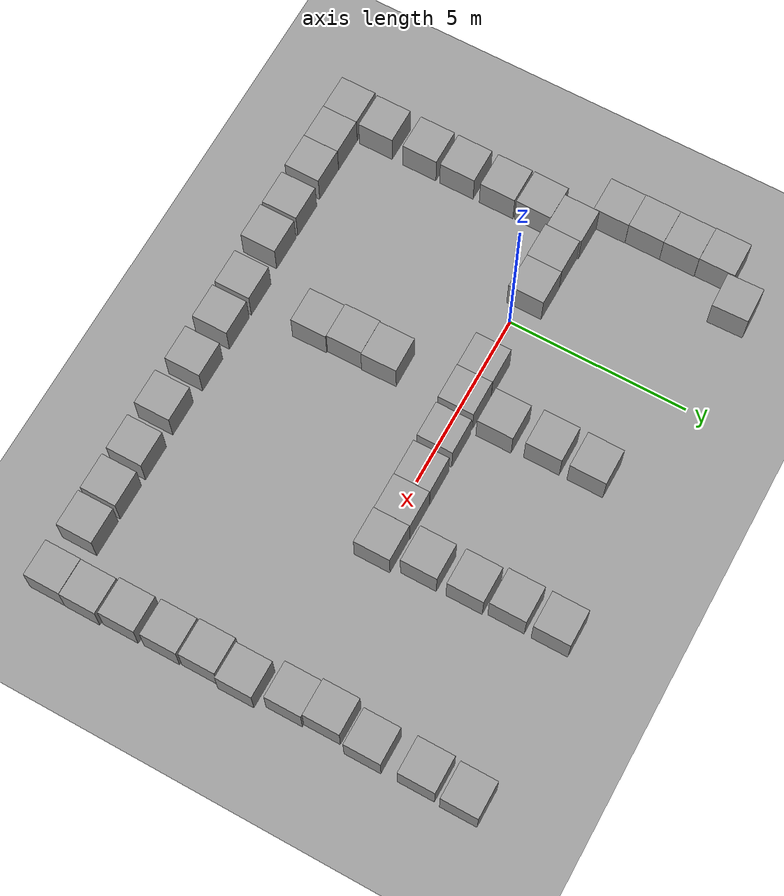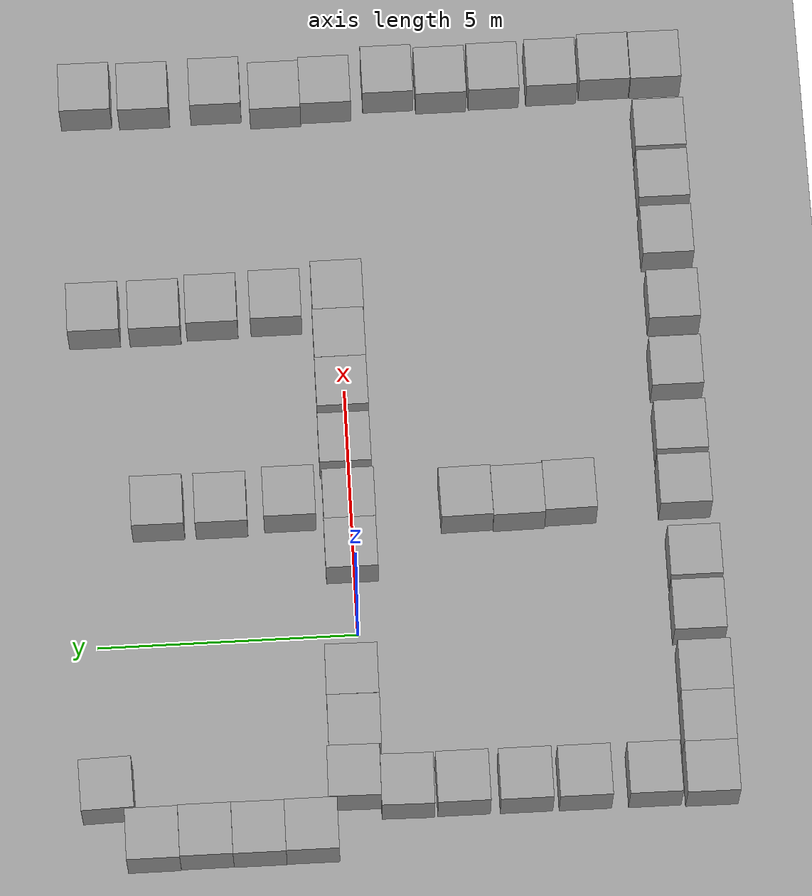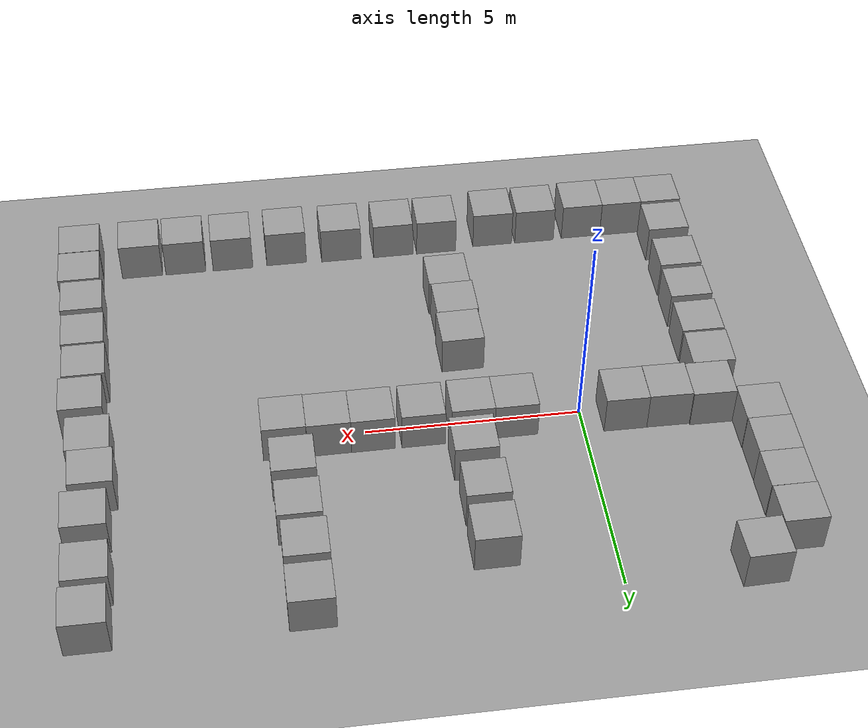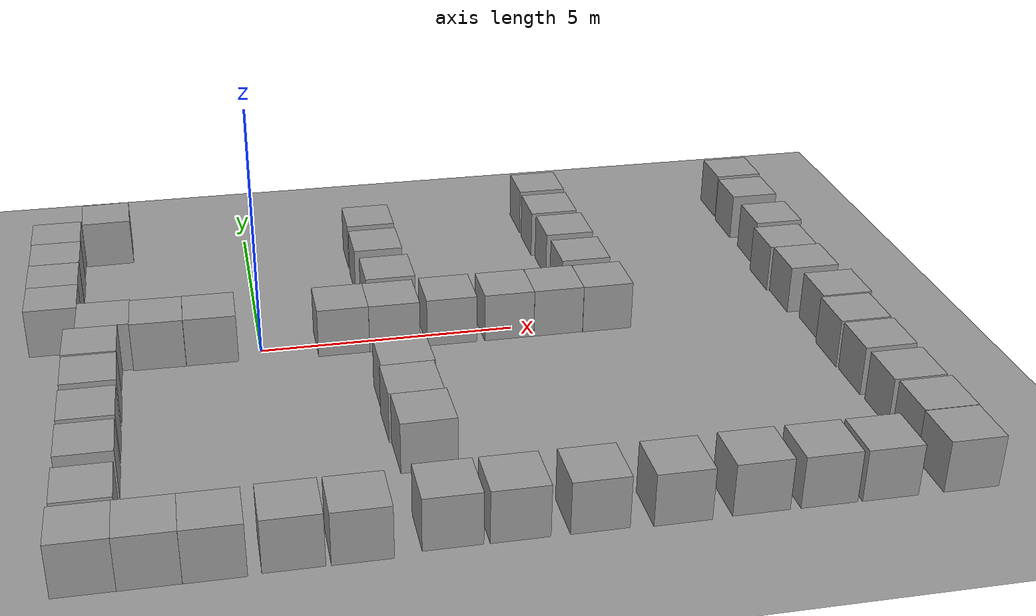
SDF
<sdf version="1.6">
 <world name="default">
  <model name="ground_plane_0">
   <static>1</static>
   <link name="link">
    <collision name="collision">
     <geometry><plane><normal>0 0 1</normal><size>100 100</size></plane></geometry>
     <surface><friction><ode><mu>100</mu><mu2>50</mu2></ode></friction></surface>
    </collision>
    <visual name="visual">
     <cast_shadows>0</cast_shadows>
     <geometry><plane><normal>0 0 1</normal><size>100 100</size></plane></geometry>
     <material>
      <script><uri>file://media/materials/scripts/gazebo.material</uri><name>Gazebo/Grey</name></script>
     </material>
    </visual>
    <velocity_decay><linear>0</linear><angular>0</angular></velocity_decay>
   </link>
   <pose>0.497681 0 0 0 -0 0</pose>
  </model>
  <model name="unit_box_0_11">
   <pose>-0.949566 0.164537 0.49907 0.0001 -0 -0.010168</pose>
   <link name="link">
    <inertial>
     <mass>1</mass>
     <inertia>
      <ixx>0.166667</ixx>
      <ixy>0</ixy>
      <ixz>0</ixz>
      <iyy>0.166667</iyy>
      <iyz>0</iyz>
      <izz>0.166667</izz>
     </inertia>
    </inertial>
    <collision name="collision"><geometry><box><size>1 1 1</size></box></geometry></collision>
    <visual name="visual">
     <geometry><box><size>1 1 1</size></box></geometry>
     <material>
      <script><name>Gazebo/Grey</name><uri>file://media/materials/scripts/gazebo.material</uri></script>
     </material>
    </visual>
   </link>
  </model>
  <model name="unit_box_0_12">
   <pose>-1.95101 0.170149 0.49967 0.00066 -0 -0.013047</pose>
   <link name="link">
    <inertial>
     <mass>1</mass>
     <inertia>
      <ixx>0.166667</ixx>
      <ixy>0</ixy>
      <ixz>0</ixz>
      <iyy>0.166667</iyy>
      <iyz>0</iyz>
      <izz>0.166667</izz>
     </inertia>
    </inertial>
    <collision name="collision"><geometry><box><size>1 1 1</size></box></geometry></collision>
    <visual name="visual">
     <geometry><box><size>1 1 1</size></box></geometry>
     <material>
      <script><name>Gazebo/Grey</name><uri>file://media/materials/scripts/gazebo.material</uri></script>
     </material>
    </visual>
   </link>
  </model>
  <model name="unit_box_0_13">
   <pose>-2.95058 0.223115 0.49967 0.00066 0 -0.013393</pose>
   <link name="link">
    <inertial>
     <mass>1</mass>
     <inertia>
      <ixx>0.166667</ixx>
      <ixy>0</ixy>
      <ixz>0</ixz>
      <iyy>0.166667</iyy>
      <iyz>0</iyz>
      <izz>0.166667</izz>
     </inertia>
    </inertial>
    <collision name="collision"><geometry><box><size>1 1 1</size></box></geometry></collision>
    <visual name="visual">
     <geometry><box><size>1 1 1</size></box></geometry>
     <material>
      <script><name>Gazebo/Grey</name><uri>file://media/materials/scripts/gazebo.material</uri></script>
     </material>
    </visual>
   </link>
  </model>
  <model name="unit_box_0_14">
   <pose>-3.95128 1.06905 0.5 0 0 -0.002373</pose>
   <link name="link">
    <inertial>
     <mass>1</mass>
     <inertia>
      <ixx>0.166667</ixx>
      <ixy>0</ixy>
      <ixz>0</ixz>
      <iyy>0.166667</iyy>
      <iyz>0</iyz>
      <izz>0.166667</izz>
     </inertia>
    </inertial>
    <collision name="collision"><geometry><box><size>1 1 1</size></box></geometry></collision>
    <visual name="visual">
     <geometry><box><size>1 1 1</size></box></geometry>
     <material>
      <script><name>Gazebo/Grey</name><uri>file://media/materials/scripts/gazebo.material</uri></script>
     </material>
    </visual>
   </link>
  </model>
  <model name="unit_box_0_15">
   <pose>-3.95717 2.06918 0.49967 0 0.00066 -0.002203</pose>
   <link name="link">
    <inertial>
     <mass>1</mass>
     <inertia>
      <ixx>0.166667</ixx>
      <ixy>0</ixy>
      <ixz>0</ixz>
      <iyy>0.166667</iyy>
      <iyz>0</iyz>
      <izz>0.166667</izz>
     </inertia>
    </inertial>
    <collision name="collision"><geometry><box><size>1 1 1</size></box></geometry></collision>
    <visual name="visual">
     <geometry><box><size>1 1 1</size></box></geometry>
     <material>
      <script><name>Gazebo/Grey</name><uri>file://media/materials/scripts/gazebo.material</uri></script>
     </material>
    </visual>
   </link>
  </model>
  <model name="unit_box_0_16">
   <pose>-3.9524 3.07047 0.5 0 -0 0.000203</pose>
   <link name="link">
    <inertial>
     <mass>1</mass>
     <inertia>
      <ixx>0.166667</ixx>
      <ixy>0</ixy>
      <ixz>0</ixz>
      <iyy>0.166667</iyy>
      <iyz>0</iyz>
      <izz>0.166667</izz>
     </inertia>
    </inertial>
    <collision name="collision"><geometry><box><size>1 1 1</size></box></geometry></collision>
    <visual name="visual">
     <geometry><box><size>1 1 1</size></box></geometry>
     <material>
      <script><name>Gazebo/Grey</name><uri>file://media/materials/scripts/gazebo.material</uri></script>
     </material>
    </visual>
   </link>
  </model>
  <model name="unit_box_0_17">
   <pose>-3.96756 4.07164 0.49967 0 0.00066 0.002599</pose>
   <link name="link">
    <inertial>
     <mass>1</mass>
     <inertia>
      <ixx>0.166667</ixx>
      <ixy>0</ixy>
      <ixz>0</ixz>
      <iyy>0.166667</iyy>
      <iyz>0</iyz>
      <izz>0.166667</izz>
     </inertia>
    </inertial>
    <collision name="collision"><geometry><box><size>1 1 1</size></box></geometry></collision>
    <visual name="visual">
     <geometry><box><size>1 1 1</size></box></geometry>
     <material>
      <script><name>Gazebo/Grey</name><uri>file://media/materials/scripts/gazebo.material</uri></script>
     </material>
    </visual>
   </link>
  </model>
  <model name="unit_box_0_18">
   <pose>-2.96141 4.90048 0.49967 0.00066 -0 0.026859</pose>
   <link name="link">
    <inertial>
     <mass>1</mass>
     <inertia>
      <ixx>0.166667</ixx>
      <ixy>0</ixy>
      <ixz>0</ixz>
      <iyy>0.166667</iyy>
      <iyz>0</iyz>
      <izz>0.166667</izz>
     </inertia>
    </inertial>
    <collision name="collision"><geometry><box><size>1 1 1</size></box></geometry></collision>
    <visual name="visual">
     <geometry><box><size>1 1 1</size></box></geometry>
     <material>
      <script><name>Gazebo/Grey</name><uri>file://media/materials/scripts/gazebo.material</uri></script>
     </material>
    </visual>
   </link>
  </model>
  <model name="unit_box_0_34_clone_0_clone_11_clone_8">
   <pose>6.66555 4.83451 0.499798 0.000404 1e-06 1e-06</pose>
   <link name="link">
    <inertial>
     <mass>1</mass>
     <inertia>
      <ixx>0.166667</ixx>
      <ixy>0</ixy>
      <ixz>0</ixz>
      <iyy>0.166667</iyy>
      <iyz>0</iyz>
      <izz>0.166667</izz>
     </inertia>
    </inertial>
    <collision name="collision"><geometry><box><size>1 1 1</size></box></geometry></collision>
    <visual name="visual">
     <geometry><box><size>1 1 1</size></box></geometry>
     <material>
      <script><name>Gazebo/Grey</name><uri>file://media/materials/scripts/gazebo.material</uri></script>
     </material>
    </visual>
   </link>
  </model>
  <model name="unit_box_0_34_clone_0_clone_11_clone_9">
   <pose>6.65852 3.64831 0.499798 0.000404 1e-06 1e-06</pose>
   <link name="link">
    <inertial>
     <mass>1</mass>
     <inertia>
      <ixx>0.166667</ixx>
      <ixy>0</ixy>
      <ixz>0</ixz>
      <iyy>0.166667</iyy>
      <iyz>0</iyz>
      <izz>0.166667</izz>
     </inertia>
    </inertial>
    <collision name="collision"><geometry><box><size>1 1 1</size></box></geometry></collision>
    <visual name="visual">
     <geometry><box><size>1 1 1</size></box></geometry>
     <material>
      <script><name>Gazebo/Grey</name><uri>file://media/materials/scripts/gazebo.material</uri></script>
     </material>
    </visual>
   </link>
  </model>
  <model name="unit_box_0_34_clone_0_clone_11_clone_10">
   <pose>6.71962 2.52993 0.499798 0.000404 1e-06 1e-06</pose>
   <link name="link">
    <inertial>
     <mass>1</mass>
     <inertia>
      <ixx>0.166667</ixx>
      <ixy>0</ixy>
      <ixz>0</ixz>
      <iyy>0.166667</iyy>
      <iyz>0</iyz>
      <izz>0.166667</izz>
     </inertia>
    </inertial>
    <collision name="collision"><geometry><box><size>1 1 1</size></box></geometry></collision>
    <visual name="visual">
     <geometry><box><size>1 1 1</size></box></geometry>
     <material>
      <script><name>Gazebo/Grey</name><uri>file://media/materials/scripts/gazebo.material</uri></script>
     </material>
    </visual>
   </link>
  </model>
  <model name="unit_box_0_34_clone_0_clone_11_clone_11">
   <pose>6.74618 1.27647 0.499798 0.000404 1e-06 1e-06</pose>
   <link name="link">
    <inertial>
     <mass>1</mass>
     <inertia>
      <ixx>0.166667</ixx>
      <ixy>0</ixy>
      <ixz>0</ixz>
      <iyy>0.166667</iyy>
      <iyz>0</iyz>
      <izz>0.166667</izz>
     </inertia>
    </inertial>
    <collision name="collision"><geometry><box><size>1 1 1</size></box></geometry></collision>
    <visual name="visual">
     <geometry><box><size>1 1 1</size></box></geometry>
     <material>
      <script><name>Gazebo/Grey</name><uri>file://media/materials/scripts/gazebo.material</uri></script>
     </material>
    </visual>
   </link>
  </model>
  <model name="unit_box_0_34_clone_0_clone_11_clone_12">
   <pose>6.87925 0.056343 0.499798 -0.000404 1e-06 0.002412</pose>
   <link name="link">
    <inertial>
     <mass>1</mass>
     <inertia>
      <ixx>0.166667</ixx>
      <ixy>0</ixy>
      <ixz>0</ixz>
      <iyy>0.166667</iyy>
      <iyz>0</iyz>
      <izz>0.166667</izz>
     </inertia>
    </inertial>
    <collision name="collision"><geometry><box><size>1 1 1</size></box></geometry></collision>
    <visual name="visual">
     <geometry><box><size>1 1 1</size></box></geometry>
     <material>
      <script><name>Gazebo/Grey</name><uri>file://media/materials/scripts/gazebo.material</uri></script>
     </material>
    </visual>
   </link>
  </model>
  <model name="unit_box_0_34_clone_0_clone_11_clone_13">
   <pose>5.87884 0.066433 0.499798 0.000404 -0 0.003125</pose>
   <link name="link">
    <inertial>
     <mass>1</mass>
     <inertia>
      <ixx>0.166667</ixx>
      <ixy>0</ixy>
      <ixz>0</ixz>
      <iyy>0.166667</iyy>
      <iyz>0</iyz>
      <izz>0.166667</izz>
     </inertia>
    </inertial>
    <collision name="collision"><geometry><box><size>1 1 1</size></box></geometry></collision>
    <visual name="visual">
     <geometry><box><size>1 1 1</size></box></geometry>
     <material>
      <script><name>Gazebo/Grey</name><uri>file://media/materials/scripts/gazebo.material</uri></script>
     </material>
    </visual>
   </link>
  </model>
  <model name="unit_box_0_34_clone_0_clone_11_clone_14">
   <pose>4.87804 0.067524 0.499798 -0.000404 0 0.003949</pose>
   <link name="link">
    <inertial>
     <mass>1</mass>
     <inertia>
      <ixx>0.166667</ixx>
      <ixy>0</ixy>
      <ixz>0</ixz>
      <iyy>0.166667</iyy>
      <iyz>0</iyz>
      <izz>0.166667</izz>
     </inertia>
    </inertial>
    <collision name="collision"><geometry><box><size>1 1 1</size></box></geometry></collision>
    <visual name="visual">
     <geometry><box><size>1 1 1</size></box></geometry>
     <material>
      <script><name>Gazebo/Grey</name><uri>file://media/materials/scripts/gazebo.material</uri></script>
     </material>
    </visual>
   </link>
  </model>
  <model name="unit_box_0_34_clone_0_clone_11_clone_15">
   <pose>3.72473 0.072234 0.499798 0.000404 1e-06 2e-06</pose>
   <link name="link">
    <inertial>
     <mass>1</mass>
     <inertia>
      <ixx>0.166667</ixx>
      <ixy>0</ixy>
      <ixz>0</ixz>
      <iyy>0.166667</iyy>
      <iyz>0</iyz>
      <izz>0.166667</izz>
     </inertia>
    </inertial>
    <collision name="collision"><geometry><box><size>1 1 1</size></box></geometry></collision>
    <visual name="visual">
     <geometry><box><size>1 1 1</size></box></geometry>
     <material>
      <script><name>Gazebo/Grey</name><uri>file://media/materials/scripts/gazebo.material</uri></script>
     </material>
    </visual>
   </link>
  </model>
  <model name="unit_box_0_34_clone_0_clone_11_clone_16">
   <pose>2.58278 0.044371 0.49907 -0.0001 -0 0.000192</pose>
   <link name="link">
    <inertial>
     <mass>1</mass>
     <inertia>
      <ixx>0.166667</ixx>
      <ixy>0</ixy>
      <ixz>0</ixz>
      <iyy>0.166667</iyy>
      <iyz>0</iyz>
      <izz>0.166667</izz>
     </inertia>
    </inertial>
    <collision name="collision"><geometry><box><size>1 1 1</size></box></geometry></collision>
    <visual name="visual">
     <geometry><box><size>1 1 1</size></box></geometry>
     <material>
      <script><name>Gazebo/Grey</name><uri>file://media/materials/scripts/gazebo.material</uri></script>
     </material>
    </visual>
   </link>
  </model>
  <model name="unit_box_0_34_clone_0_clone_11_clone_17">
   <pose>2.68039 1.19555 0.499798 0.000404 1e-06 2e-06</pose>
   <link name="link">
    <inertial>
     <mass>1</mass>
     <inertia>
      <ixx>0.166667</ixx>
      <ixy>0</ixy>
      <ixz>0</ixz>
      <iyy>0.166667</iyy>
      <iyz>0</iyz>
      <izz>0.166667</izz>
     </inertia>
    </inertial>
    <collision name="collision"><geometry><box><size>1 1 1</size></box></geometry></collision>
    <visual name="visual">
     <geometry><box><size>1 1 1</size></box></geometry>
     <material>
      <script><name>Gazebo/Grey</name><uri>file://media/materials/scripts/gazebo.material</uri></script>
     </material>
    </visual>
   </link>
  </model>
  <model name="unit_box_0_34_clone_0_clone_11_clone_18">
   <pose>2.61978 2.51766 0.499798 0.000404 1e-06 2e-06</pose>
   <link name="link">
    <inertial>
     <mass>1</mass>
     <inertia>
      <ixx>0.166667</ixx>
      <ixy>0</ixy>
      <ixz>0</ixz>
      <iyy>0.166667</iyy>
      <iyz>0</iyz>
      <izz>0.166667</izz>
     </inertia>
    </inertial>
    <collision name="collision"><geometry><box><size>1 1 1</size></box></geometry></collision>
    <visual name="visual">
     <geometry><box><size>1 1 1</size></box></geometry>
     <material>
      <script><name>Gazebo/Grey</name><uri>file://media/materials/scripts/gazebo.material</uri></script>
     </material>
    </visual>
   </link>
  </model>
  <model name="unit_box_0_34_clone_0_clone_11_clone_19">
   <pose>2.62649 3.73801 0.499798 0.000404 1e-06 2e-06</pose>
   <link name="link">
    <inertial>
     <mass>1</mass>
     <inertia>
      <ixx>0.166667</ixx>
      <ixy>0</ixy>
      <ixz>0</ixz>
      <iyy>0.166667</iyy>
      <iyz>0</iyz>
      <izz>0.166667</izz>
     </inertia>
    </inertial>
    <collision name="collision"><geometry><box><size>1 1 1</size></box></geometry></collision>
    <visual name="visual">
     <geometry><box><size>1 1 1</size></box></geometry>
     <material>
      <script><name>Gazebo/Grey</name><uri>file://media/materials/scripts/gazebo.material</uri></script>
     </material>
    </visual>
   </link>
  </model>
  <model name="unit_box_0_34_clone_0_clone_11_clone_22">
   <pose>2.47808 -3.20613 0.49967 0 -0.00066 0.013736</pose>
   <link name="link">
    <inertial>
     <mass>1</mass>
     <inertia>
      <ixx>0.166667</ixx>
      <ixy>0</ixy>
      <ixz>0</ixz>
      <iyy>0.166667</iyy>
      <iyz>0</iyz>
      <izz>0.166667</izz>
     </inertia>
    </inertial>
    <collision name="collision"><geometry><box><size>1 1 1</size></box></geometry></collision>
    <visual name="visual">
     <geometry><box><size>1 1 1</size></box></geometry>
     <material>
      <script><name>Gazebo/Grey</name><uri>file://media/materials/scripts/gazebo.material</uri></script>
     </material>
    </visual>
   </link>
  </model>
  <model name="unit_box_0_34_clone_0_clone_11_clone_24">
   <pose>2.53703 -6.42349 0.499798 0.000404 1e-06 2e-06</pose>
   <link name="link">
    <inertial>
     <mass>1</mass>
     <inertia>
      <ixx>0.166667</ixx>
      <ixy>0</ixy>
      <ixz>0</ixz>
      <iyy>0.166667</iyy>
      <iyz>0</iyz>
      <izz>0.166667</izz>
     </inertia>
    </inertial>
    <collision name="collision"><geometry><box><size>1 1 1</size></box></geometry></collision>
    <visual name="visual">
     <geometry><box><size>1 1 1</size></box></geometry>
     <material>
      <script><name>Gazebo/Grey</name><uri>file://media/materials/scripts/gazebo.material</uri></script>
     </material>
    </visual>
   </link>
  </model>
  <model name="unit_box_0_34_clone_0_clone_11_clone_25">
   <pose>1.07962 -6.51914 0.499798 0.000404 1e-06 2e-06</pose>
   <link name="link">
    <inertial>
     <mass>1</mass>
     <inertia>
      <ixx>0.166667</ixx>
      <ixy>0</ixy>
      <ixz>0</ixz>
      <iyy>0.166667</iyy>
      <iyz>0</iyz>
      <izz>0.166667</izz>
     </inertia>
    </inertial>
    <collision name="collision"><geometry><box><size>1 1 1</size></box></geometry></collision>
    <visual name="visual">
     <geometry><box><size>1 1 1</size></box></geometry>
     <material>
      <script><name>Gazebo/Grey</name><uri>file://media/materials/scripts/gazebo.material</uri></script>
     </material>
    </visual>
   </link>
  </model>
  <model name="unit_box_0_34_clone_0_clone_11_clone_26">
   <pose>-0.004811 -6.51437 0.499798 0.000404 1e-06 2e-06</pose>
   <link name="link">
    <inertial>
     <mass>1</mass>
     <inertia>
      <ixx>0.166667</ixx>
      <ixy>0</ixy>
      <ixz>0</ixz>
      <iyy>0.166667</iyy>
      <iyz>0</iyz>
      <izz>0.166667</izz>
     </inertia>
    </inertial>
    <collision name="collision"><geometry><box><size>1 1 1</size></box></geometry></collision>
    <visual name="visual">
     <geometry><box><size>1 1 1</size></box></geometry>
     <material>
      <script><name>Gazebo/Grey</name><uri>file://media/materials/scripts/gazebo.material</uri></script>
     </material>
    </visual>
   </link>
  </model>
  <model name="unit_box_0_34_clone_0_clone_11_clone_27">
   <pose>-1.22096 -6.54649 0.499798 0.000404 1e-06 -0.001846</pose>
   <link name="link">
    <inertial>
     <mass>1</mass>
     <inertia>
      <ixx>0.166667</ixx>
      <ixy>0</ixy>
      <ixz>0</ixz>
      <iyy>0.166667</iyy>
      <iyz>0</iyz>
      <izz>0.166667</izz>
     </inertia>
    </inertial>
    <collision name="collision"><geometry><box><size>1 1 1</size></box></geometry></collision>
    <visual name="visual">
     <geometry><box><size>1 1 1</size></box></geometry>
     <material>
      <script><name>Gazebo/Grey</name><uri>file://media/materials/scripts/gazebo.material</uri></script>
     </material>
    </visual>
   </link>
  </model>
  <model name="unit_box_0_34_clone_0_clone_11_clone_28">
   <pose>-2.22126 -6.54057 0.499798 0.000404 1e-06 -0.002334</pose>
   <link name="link">
    <inertial>
     <mass>1</mass>
     <inertia>
      <ixx>0.166667</ixx>
      <ixy>0</ixy>
      <ixz>0</ixz>
      <iyy>0.166667</iyy>
      <iyz>0</iyz>
      <izz>0.166667</izz>
     </inertia>
    </inertial>
    <collision name="collision"><geometry><box><size>1 1 1</size></box></geometry></collision>
    <visual name="visual">
     <geometry><box><size>1 1 1</size></box></geometry>
     <material>
      <script><name>Gazebo/Grey</name><uri>file://media/materials/scripts/gazebo.material</uri></script>
     </material>
    </visual>
   </link>
  </model>
  <model name="unit_box_0_34_clone_0_clone_11_clone_29">
   <pose>-3.2214 -6.53428 0.499798 0.000404 1e-06 -0.00248</pose>
   <link name="link">
    <inertial>
     <mass>1</mass>
     <inertia>
      <ixx>0.166667</ixx>
      <ixy>0</ixy>
      <ixz>0</ixz>
      <iyy>0.166667</iyy>
      <iyz>0</iyz>
      <izz>0.166667</izz>
     </inertia>
    </inertial>
    <collision name="collision"><geometry><box><size>1 1 1</size></box></geometry></collision>
    <visual name="visual">
     <geometry><box><size>1 1 1</size></box></geometry>
     <material>
      <script><name>Gazebo/Grey</name><uri>file://media/materials/scripts/gazebo.material</uri></script>
     </material>
    </visual>
   </link>
  </model>
  <model name="unit_box_0_34_clone_0_clone_11_clone_30">
   <pose>-3.18721 -5.45202 0.499798 0.000404 1e-06 5e-06</pose>
   <link name="link">
    <inertial>
     <mass>1</mass>
     <inertia>
      <ixx>0.166667</ixx>
      <ixy>0</ixy>
      <ixz>0</ixz>
      <iyy>0.166667</iyy>
      <iyz>0</iyz>
      <izz>0.166667</izz>
     </inertia>
    </inertial>
    <collision name="collision"><geometry><box><size>1 1 1</size></box></geometry></collision>
    <visual name="visual">
     <geometry><box><size>1 1 1</size></box></geometry>
     <material>
      <script><name>Gazebo/Grey</name><uri>file://media/materials/scripts/gazebo.material</uri></script>
     </material>
    </visual>
   </link>
  </model>
  <model name="unit_box_0_34_clone_0_clone_11_clone_31">
   <pose>-3.18061 -4.13073 0.499798 0.000404 1e-06 5e-06</pose>
   <link name="link">
    <inertial>
     <mass>1</mass>
     <inertia>
      <ixx>0.166667</ixx>
      <ixy>0</ixy>
      <ixz>0</ixz>
      <iyy>0.166667</iyy>
      <iyz>0</iyz>
      <izz>0.166667</izz>
     </inertia>
    </inertial>
    <collision name="collision"><geometry><box><size>1 1 1</size></box></geometry></collision>
    <visual name="visual">
     <geometry><box><size>1 1 1</size></box></geometry>
     <material>
      <script><name>Gazebo/Grey</name><uri>file://media/materials/scripts/gazebo.material</uri></script>
     </material>
    </visual>
   </link>
  </model>
  <model name="unit_box_0_34_clone_0_clone_11_clone_32">
   <pose>-3.17502 -3.01227 0.499798 0.000404 1e-06 5e-06</pose>
   <link name="link">
    <inertial>
     <mass>1</mass>
     <inertia>
      <ixx>0.166667</ixx>
      <ixy>0</ixy>
      <ixz>0</ixz>
      <iyy>0.166667</iyy>
      <iyz>0</iyz>
      <izz>0.166667</izz>
     </inertia>
    </inertial>
    <collision name="collision"><geometry><box><size>1 1 1</size></box></geometry></collision>
    <visual name="visual">
     <geometry><box><size>1 1 1</size></box></geometry>
     <material>
      <script><name>Gazebo/Grey</name><uri>file://media/materials/scripts/gazebo.material</uri></script>
     </material>
    </visual>
   </link>
  </model>
  <model name="unit_box_0_34_clone_0_clone_11_clone_33">
   <pose>-3.16967 -1.8264 0.499798 0.000404 -1e-06 1e-06</pose>
   <link name="link">
    <inertial>
     <mass>1</mass>
     <inertia>
      <ixx>0.166667</ixx>
      <ixy>0</ixy>
      <ixz>0</ixz>
      <iyy>0.166667</iyy>
      <iyz>0</iyz>
      <izz>0.166667</izz>
     </inertia>
    </inertial>
    <collision name="collision"><geometry><box><size>1 1 1</size></box></geometry></collision>
    <visual name="visual">
     <geometry><box><size>1 1 1</size></box></geometry>
     <material>
      <script><name>Gazebo/Grey</name><uri>file://media/materials/scripts/gazebo.material</uri></script>
     </material>
    </visual>
   </link>
  </model>
  <model name="unit_box_0_34_clone_0_clone_11_clone_34">
   <pose>-3.17283 -0.775027 0.49967 0.00066 -0 -0.016771</pose>
   <link name="link">
    <inertial>
     <mass>1</mass>
     <inertia>
      <ixx>0.166667</ixx>
      <ixy>0</ixy>
      <ixz>0</ixz>
      <iyy>0.166667</iyy>
      <iyz>0</iyz>
      <izz>0.166667</izz>
     </inertia>
    </inertial>
    <collision name="collision"><geometry><box><size>1 1 1</size></box></geometry></collision>
    <visual name="visual">
     <geometry><box><size>1 1 1</size></box></geometry>
     <material>
      <script><name>Gazebo/Grey</name><uri>file://media/materials/scripts/gazebo.material</uri></script>
     </material>
    </visual>
   </link>
  </model>
  <model name="unit_box_0">
   <pose>11.2234 0.09237 0.49907 0 -0.0001 0.001534</pose>
   <link name="link">
    <inertial>
     <mass>1</mass>
     <inertia>
      <ixx>0.166667</ixx>
      <ixy>0</ixy>
      <ixz>0</ixz>
      <iyy>0.166667</iyy>
      <iyz>0</iyz>
      <izz>0.166667</izz>
     </inertia>
    </inertial>
    <collision name="collision"><geometry><box><size>1 1 1</size></box></geometry></collision>
    <visual name="visual">
     <geometry><box><size>1 1 1</size></box></geometry>
     <material>
      <script><name>Gazebo/Grey</name><uri>file://media/materials/scripts/gazebo.material</uri></script>
     </material>
    </visual>
   </link>
  </model>
  <model name="unit_box_0_clone">
   <pose>11.1601 1.09237 0.5 0 -0 0.00147</pose>
   <link name="link">
    <inertial>
     <mass>1</mass>
     <inertia>
      <ixx>0.166667</ixx>
      <ixy>0</ixy>
      <ixz>0</ixz>
      <iyy>0.166667</iyy>
      <iyz>0</iyz>
      <izz>0.166667</izz>
     </inertia>
    </inertial>
    <collision name="collision"><geometry><box><size>1 1 1</size></box></geometry></collision>
    <visual name="visual">
     <geometry><box><size>1 1 1</size></box></geometry>
     <material>
      <script><name>Gazebo/Grey</name><uri>file://media/materials/scripts/gazebo.material</uri></script>
     </material>
    </visual>
   </link>
  </model>
  <model name="unit_box_0_clone_0">
   <pose>11.3036 2.26887 0.499798 0.000404 -1e-06 1e-06</pose>
   <link name="link">
    <inertial>
     <mass>1</mass>
     <inertia>
      <ixx>0.166667</ixx>
      <ixy>0</ixy>
      <ixz>0</ixz>
      <iyy>0.166667</iyy>
      <iyz>0</iyz>
      <izz>0.166667</izz>
     </inertia>
    </inertial>
    <collision name="collision"><geometry><box><size>1 1 1</size></box></geometry></collision>
    <visual name="visual">
     <geometry><box><size>1 1 1</size></box></geometry>
     <material>
      <script><name>Gazebo/Grey</name><uri>file://media/materials/scripts/gazebo.material</uri></script>
     </material>
    </visual>
   </link>
  </model>
  <model name="unit_box_0_clone_1">
   <pose>11.2787 3.6912 0.49907 0.0001 -0 0</pose>
   <link name="link">
    <inertial>
     <mass>1</mass>
     <inertia>
      <ixx>0.166667</ixx>
      <ixy>0</ixy>
      <ixz>0</ixz>
      <iyy>0.166667</iyy>
      <iyz>0</iyz>
      <izz>0.166667</izz>
     </inertia>
    </inertial>
    <collision name="collision"><geometry><box><size>1 1 1</size></box></geometry></collision>
    <visual name="visual">
     <geometry><box><size>1 1 1</size></box></geometry>
     <material>
      <script><name>Gazebo/Grey</name><uri>file://media/materials/scripts/gazebo.material</uri></script>
     </material>
    </visual>
   </link>
  </model>
  <model name="unit_box_0_clone_2">
   <pose>11.3196 4.84239 0.499798 0.000404 1e-06 0</pose>
   <link name="link">
    <inertial>
     <mass>1</mass>
     <inertia>
      <ixx>0.166667</ixx>
      <ixy>0</ixy>
      <ixz>0</ixz>
      <iyy>0.166667</iyy>
      <iyz>0</iyz>
      <izz>0.166667</izz>
     </inertia>
    </inertial>
    <collision name="collision"><geometry><box><size>1 1 1</size></box></geometry></collision>
    <visual name="visual">
     <geometry><box><size>1 1 1</size></box></geometry>
     <material>
      <script><name>Gazebo/Grey</name><uri>file://media/materials/scripts/gazebo.material</uri></script>
     </material>
    </visual>
   </link>
  </model>
  <model name="unit_box_0_clone_25">
   <pose>11.3838 -1.14999 0.499798 -0.000404 1e-06 0.001542</pose>
   <link name="link">
    <inertial>
     <mass>1</mass>
     <inertia>
      <ixx>0.166667</ixx>
      <ixy>0</ixy>
      <ixz>0</ixz>
      <iyy>0.166667</iyy>
      <iyz>0</iyz>
      <izz>0.166667</izz>
     </inertia>
    </inertial>
    <collision name="collision"><geometry><box><size>1 1 1</size></box></geometry></collision>
    <visual name="visual">
     <geometry><box><size>1 1 1</size></box></geometry>
     <material>
      <script><name>Gazebo/Grey</name><uri>file://media/materials/scripts/gazebo.material</uri></script>
     </material>
    </visual>
   </link>
  </model>
  <model name="unit_box_0_clone_26">
   <pose>11.3095 -2.19839 0.499798 -0.000404 1e-06 0.001543</pose>
   <link name="link">
    <inertial>
     <mass>1</mass>
     <inertia>
      <ixx>0.166667</ixx>
      <ixy>0</ixy>
      <ixz>0</ixz>
      <iyy>0.166667</iyy>
      <iyz>0</iyz>
      <izz>0.166667</izz>
     </inertia>
    </inertial>
    <collision name="collision"><geometry><box><size>1 1 1</size></box></geometry></collision>
    <visual name="visual">
     <geometry><box><size>1 1 1</size></box></geometry>
     <material>
      <script><name>Gazebo/Grey</name><uri>file://media/materials/scripts/gazebo.material</uri></script>
     </material>
    </visual>
   </link>
  </model>
  <model name="unit_box_0_clone_27">
   <pose>11.3367 -3.24702 0.499798 -0.000404 1e-06 0.001542</pose>
   <link name="link">
    <inertial>
     <mass>1</mass>
     <inertia>
      <ixx>0.166667</ixx>
      <ixy>0</ixy>
      <ixz>0</ixz>
      <iyy>0.166667</iyy>
      <iyz>0</iyz>
      <izz>0.166667</izz>
     </inertia>
    </inertial>
    <collision name="collision"><geometry><box><size>1 1 1</size></box></geometry></collision>
    <visual name="visual">
     <geometry><box><size>1 1 1</size></box></geometry>
     <material>
      <script><name>Gazebo/Grey</name><uri>file://media/materials/scripts/gazebo.material</uri></script>
     </material>
    </visual>
   </link>
  </model>
  <model name="unit_box_0_clone_28">
   <pose>11.3632 -4.39685 0.499798 -0.000404 1e-06 0.001544</pose>
   <link name="link">
    <inertial>
     <mass>1</mass>
     <inertia>
      <ixx>0.166667</ixx>
      <ixy>0</ixy>
      <ixz>0</ixz>
      <iyy>0.166667</iyy>
      <iyz>0</iyz>
      <izz>0.166667</izz>
     </inertia>
    </inertial>
    <collision name="collision"><geometry><box><size>1 1 1</size></box></geometry></collision>
    <visual name="visual">
     <geometry><box><size>1 1 1</size></box></geometry>
     <material>
      <script><name>Gazebo/Grey</name><uri>file://media/materials/scripts/gazebo.material</uri></script>
     </material>
    </visual>
   </link>
  </model>
  <model name="unit_box_0_clone_29">
   <pose>11.4248 -5.44771 0.5 0 -0 0.000314</pose>
   <link name="link">
    <inertial>
     <mass>1</mass>
     <inertia>
      <ixx>0.166667</ixx>
      <ixy>0</ixy>
      <ixz>0</ixz>
      <iyy>0.166667</iyy>
      <iyz>0</iyz>
      <izz>0.166667</izz>
     </inertia>
    </inertial>
    <collision name="collision"><geometry><box><size>1 1 1</size></box></geometry></collision>
    <visual name="visual">
     <geometry><box><size>1 1 1</size></box></geometry>
     <material>
      <script><name>Gazebo/Grey</name><uri>file://media/materials/scripts/gazebo.material</uri></script>
     </material>
    </visual>
   </link>
  </model>
  <model name="unit_box_0_clone_30">
   <pose>11.4181 -6.45827 0.499798 -0.000404 -0 0.001672</pose>
   <link name="link">
    <inertial>
     <mass>1</mass>
     <inertia>
      <ixx>0.166667</ixx>
      <ixy>0</ixy>
      <ixz>0</ixz>
      <iyy>0.166667</iyy>
      <iyz>0</iyz>
      <izz>0.166667</izz>
     </inertia>
    </inertial>
    <collision name="collision"><geometry><box><size>1 1 1</size></box></geometry></collision>
    <visual name="visual">
     <geometry><box><size>1 1 1</size></box></geometry>
     <material>
      <script><name>Gazebo/Grey</name><uri>file://media/materials/scripts/gazebo.material</uri></script>
     </material>
    </visual>
   </link>
  </model>
  <model name="unit_box_0_clone_31">
   <pose>9.9647 -6.45371 0.499798 -0.000404 1e-06 0.001546</pose>
   <link name="link">
    <inertial>
     <mass>1</mass>
     <inertia>
      <ixx>0.166667</ixx>
      <ixy>0</ixy>
      <ixz>0</ixz>
      <iyy>0.166667</iyy>
      <iyz>0</iyz>
      <izz>0.166667</izz>
     </inertia>
    </inertial>
    <collision name="collision"><geometry><box><size>1 1 1</size></box></geometry></collision>
    <visual name="visual">
     <geometry><box><size>1 1 1</size></box></geometry>
     <material>
      <script><name>Gazebo/Grey</name><uri>file://media/materials/scripts/gazebo.material</uri></script>
     </material>
    </visual>
   </link>
  </model>
  <model name="unit_box_0_clone_32">
   <pose>8.88273 -6.44928 0.499798 -0.000404 1e-06 0.001547</pose>
   <link name="link">
    <inertial>
     <mass>1</mass>
     <inertia>
      <ixx>0.166667</ixx>
      <ixy>0</ixy>
      <ixz>0</ixz>
      <iyy>0.166667</iyy>
      <iyz>0</iyz>
      <izz>0.166667</izz>
     </inertia>
    </inertial>
    <collision name="collision"><geometry><box><size>1 1 1</size></box></geometry></collision>
    <visual name="visual">
     <geometry><box><size>1 1 1</size></box></geometry>
     <material>
      <script><name>Gazebo/Grey</name><uri>file://media/materials/scripts/gazebo.material</uri></script>
     </material>
    </visual>
   </link>
  </model>
  <model name="unit_box_0_clone_33">
   <pose>7.6988 -6.44444 0.499798 -0.000404 -0 0.001544</pose>
   <link name="link">
    <inertial>
     <mass>1</mass>
     <inertia>
      <ixx>0.166667</ixx>
      <ixy>0</ixy>
      <ixz>0</ixz>
      <iyy>0.166667</iyy>
      <iyz>0</iyz>
      <izz>0.166667</izz>
     </inertia>
    </inertial>
    <collision name="collision"><geometry><box><size>1 1 1</size></box></geometry></collision>
    <visual name="visual">
     <geometry><box><size>1 1 1</size></box></geometry>
     <material>
      <script><name>Gazebo/Grey</name><uri>file://media/materials/scripts/gazebo.material</uri></script>
     </material>
    </visual>
   </link>
  </model>
  <model name="unit_box_0_clone_34">
   <pose>4.95802 -6.43314 0.499798 -0.000404 1e-06 0.001545</pose>
   <link name="link">
    <inertial>
     <mass>1</mass>
     <inertia>
      <ixx>0.166667</ixx>
      <ixy>0</ixy>
      <ixz>0</ixz>
      <iyy>0.166667</iyy>
      <iyz>0</iyz>
      <izz>0.166667</izz>
     </inertia>
    </inertial>
    <collision name="collision"><geometry><box><size>1 1 1</size></box></geometry></collision>
    <visual name="visual">
     <geometry><box><size>1 1 1</size></box></geometry>
     <material>
      <script><name>Gazebo/Grey</name><uri>file://media/materials/scripts/gazebo.material</uri></script>
     </material>
    </visual>
   </link>
  </model>
  <model name="unit_box_0_clone_35">
   <pose>6.34531 -6.47267 0.499798 -0.000404 0 0.001545</pose>
   <link name="link">
    <inertial>
     <mass>1</mass>
     <inertia>
      <ixx>0.166667</ixx>
      <ixy>0</ixy>
      <ixz>0</ixz>
      <iyy>0.166667</iyy>
      <iyz>0</iyz>
      <izz>0.166667</izz>
     </inertia>
    </inertial>
    <collision name="collision"><geometry><box><size>1 1 1</size></box></geometry></collision>
    <visual name="visual">
     <geometry><box><size>1 1 1</size></box></geometry>
     <material>
      <script><name>Gazebo/Grey</name><uri>file://media/materials/scripts/gazebo.material</uri></script>
     </material>
    </visual>
   </link>
  </model>
  <model name="unit_box_0_clone_36">
   <pose>3.6379 -6.42809 0.49967 0 0.00066 0.00155</pose>
   <link name="link">
    <inertial>
     <mass>1</mass>
     <inertia>
      <ixx>0.166667</ixx>
      <ixy>0</ixy>
      <ixz>0</ixz>
      <iyy>0.166667</iyy>
      <iyz>0</iyz>
      <izz>0.166667</izz>
     </inertia>
    </inertial>
    <collision name="collision"><geometry><box><size>1 1 1</size></box></geometry></collision>
    <visual name="visual">
     <geometry><box><size>1 1 1</size></box></geometry>
     <material>
      <script><name>Gazebo/Grey</name><uri>file://media/materials/scripts/gazebo.material</uri></script>
     </material>
    </visual>
   </link>
  </model>
  <model name="unit_box_0_clone_39">
   <pose>1.58255 0.052206 0.499798 -0.000404 -1e-06 -0.000217</pose>
   <link name="link">
    <inertial>
     <mass>1</mass>
     <inertia>
      <ixx>0.166667</ixx>
      <ixy>0</ixy>
      <ixz>0</ixz>
      <iyy>0.166667</iyy>
      <iyz>0</iyz>
      <izz>0.166667</izz>
     </inertia>
    </inertial>
    <collision name="collision"><geometry><box><size>1 1 1</size></box></geometry></collision>
    <visual name="visual">
     <geometry><box><size>1 1 1</size></box></geometry>
     <material>
      <script><name>Gazebo/Grey</name><uri>file://media/materials/scripts/gazebo.material</uri></script>
     </material>
    </visual>
   </link>
  </model>
  <model name="unit_box_0_clone_38">
   <pose>2.49191 -2.20472 0.5 0 -0 0.014987</pose>
   <link name="link">
    <inertial>
     <mass>1</mass>
     <inertia>
      <ixx>0.166667</ixx>
      <ixy>0</ixy>
      <ixz>0</ixz>
      <iyy>0.166667</iyy>
      <iyz>0</iyz>
      <izz>0.166667</izz>
     </inertia>
    </inertial>
    <collision name="collision"><geometry><box><size>1 1 1</size></box></geometry></collision>
    <visual name="visual">
     <geometry><box><size>1 1 1</size></box></geometry>
     <material>
      <script><name>Gazebo/Grey</name><uri>file://media/materials/scripts/gazebo.material</uri></script>
     </material>
    </visual>
   </link>
  </model>
  <model name="unit_box_0_clone_37">
   <pose>2.5316 -4.20552 0.49907 0 -0.0001 0.013745</pose>
   <link name="link">
    <inertial>
     <mass>1</mass>
     <inertia>
      <ixx>0.166667</ixx>
      <ixy>0</ixy>
      <ixz>0</ixz>
      <iyy>0.166667</iyy>
      <iyz>0</iyz>
      <izz>0.166667</izz>
     </inertia>
    </inertial>
    <collision name="collision"><geometry><box><size>1 1 1</size></box></geometry></collision>
    <visual name="visual">
     <geometry><box><size>1 1 1</size></box></geometry>
     <material>
      <script><name>Gazebo/Grey</name><uri>file://media/materials/scripts/gazebo.material</uri></script>
     </material>
    </visual>
   </link>
  </model>
 </world>
</sdf>
